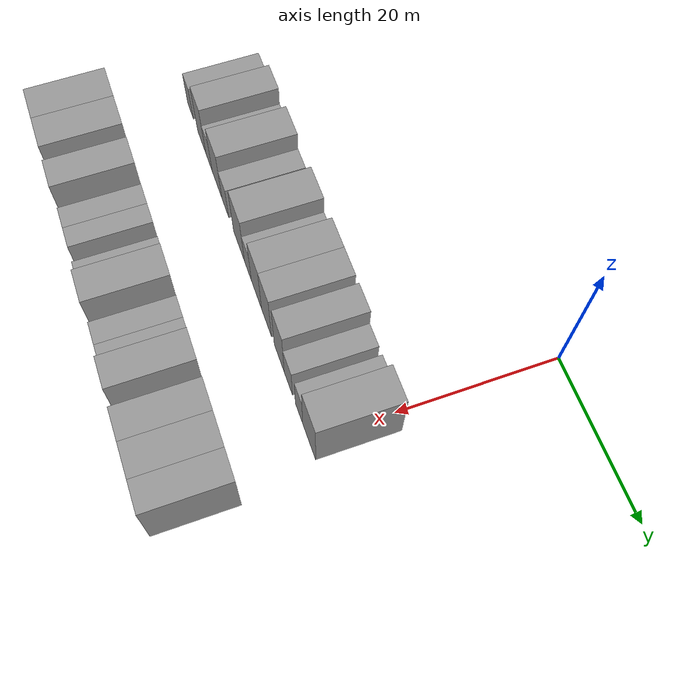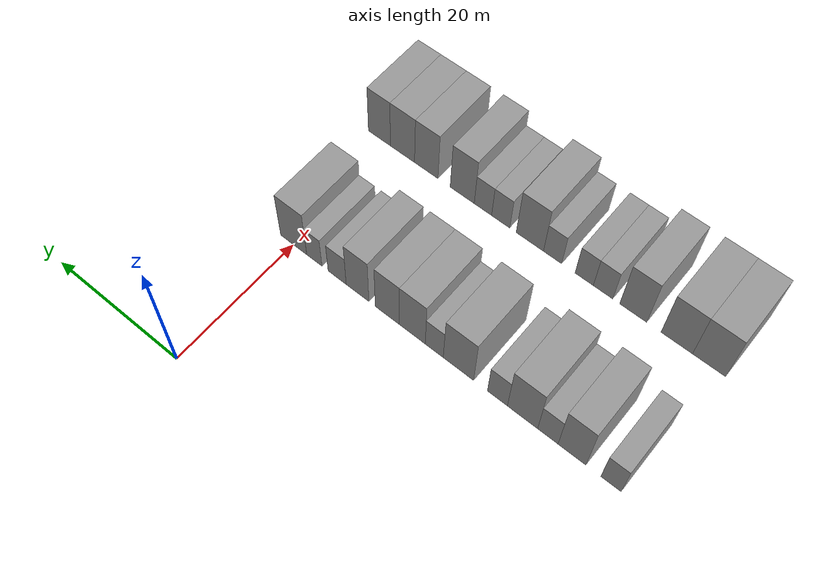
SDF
<sdf version="1.6">
 <world name="default">
  <model name="building_38">
   <static>1</static>
   <pose>25.0000 -47.1336 0 0.000000 0.000000 0.000000</pose>
   <link name="link">
    <pose>0 0 3.00 0 0 0</pose>
    <collision name="collision"><geometry><box><size>10.0000 2.6821 6.0000</size></box></geometry></collision>
    <visual name="visual">
     <cast_shadows>0</cast_shadows>
     <geometry><box><size>10.0000 2.6821 6.0000</size></box></geometry>
     <material>
      <script>
       <uri>model://grey_wall/materials/scripts</uri>
       <uri>model://grey_wall/materials/textures</uri>
       <name>vrc/grey_wall</name>
      </script>
     </material>
    </visual>
   </link>
  </model>
  <model name="building_39">
   <static>1</static>
   <pose>25.0000 -41.9003 0 0.000000 0.000000 0.000000</pose>
   <link name="link">
    <pose>0 0 4.50 0 0 0</pose>
    <collision name="collision"><geometry><box><size>10.0000 3.7845 9.0000</size></box></geometry></collision>
    <visual name="visual">
     <cast_shadows>0</cast_shadows>
     <geometry><box><size>10.0000 3.7845 9.0000</size></box></geometry>
     <material>
      <script>
       <uri>model://grey_wall/materials/scripts</uri>
       <uri>model://grey_wall/materials/textures</uri>
       <name>vrc/grey_wall</name>
      </script>
     </material>
    </visual>
   </link>
  </model>
  <model name="building_40">
   <static>1</static>
   <pose>25.0000 -38.6015 0 0.000000 0.000000 0.000000</pose>
   <link name="link">
    <pose>0 0 3.00 0 0 0</pose>
    <collision name="collision"><geometry><box><size>10.0000 2.8131 6.0000</size></box></geometry></collision>
    <visual name="visual">
     <cast_shadows>0</cast_shadows>
     <geometry><box><size>10.0000 2.8131 6.0000</size></box></geometry>
     <material>
      <script>
       <uri>model://grey_wall/materials/scripts</uri>
       <uri>model://grey_wall/materials/textures</uri>
       <name>vrc/grey_wall</name>
      </script>
     </material>
    </visual>
   </link>
  </model>
  <model name="building_41">
   <static>1</static>
   <pose>25.0000 -35.0680 0 0.000000 0.000000 0.000000</pose>
   <link name="link">
    <pose>0 0 4.50 0 0 0</pose>
    <collision name="collision"><geometry><box><size>10.0000 4.2538 9.0000</size></box></geometry></collision>
    <visual name="visual">
     <cast_shadows>0</cast_shadows>
     <geometry><box><size>10.0000 4.2538 9.0000</size></box></geometry>
     <material>
      <script>
       <uri>model://grey_wall/materials/scripts</uri>
       <uri>model://grey_wall/materials/textures</uri>
       <name>vrc/grey_wall</name>
      </script>
     </material>
    </visual>
   </link>
  </model>
  <model name="building_42">
   <static>1</static>
   <pose>25.0000 -31.5135 0 0.000000 0.000000 0.000000</pose>
   <link name="link">
    <pose>0 0 3.00 0 0 0</pose>
    <collision name="collision"><geometry><box><size>10.0000 2.8553 6.0000</size></box></geometry></collision>
    <visual name="visual">
     <cast_shadows>0</cast_shadows>
     <geometry><box><size>10.0000 2.8553 6.0000</size></box></geometry>
     <material>
      <script>
       <uri>model://grey_wall/materials/scripts</uri>
       <uri>model://grey_wall/materials/textures</uri>
       <name>vrc/grey_wall</name>
      </script>
     </material>
    </visual>
   </link>
  </model>
  <model name="building_43">
   <static>1</static>
   <pose>25.0000 -25.8438 0 0.000000 0.000000 0.000000</pose>
   <link name="link">
    <pose>0 0 4.50 0 0 0</pose>
    <collision name="collision"><geometry><box><size>10.0000 4.4839 9.0000</size></box></geometry></collision>
    <visual name="visual">
     <cast_shadows>0</cast_shadows>
     <geometry><box><size>10.0000 4.4839 9.0000</size></box></geometry>
     <material>
      <script>
       <uri>model://grey_wall/materials/scripts</uri>
       <uri>model://grey_wall/materials/textures</uri>
       <name>vrc/grey_wall</name>
      </script>
     </material>
    </visual>
   </link>
  </model>
  <model name="building_44">
   <static>1</static>
   <pose>25.0000 -22.2543 0 0.000000 0.000000 0.000000</pose>
   <link name="link">
    <pose>0 0 3.00 0 0 0</pose>
    <collision name="collision"><geometry><box><size>10.0000 2.6952 6.0000</size></box></geometry></collision>
    <visual name="visual">
     <cast_shadows>0</cast_shadows>
     <geometry><box><size>10.0000 2.6952 6.0000</size></box></geometry>
     <material>
      <script>
       <uri>model://grey_wall/materials/scripts</uri>
       <uri>model://grey_wall/materials/textures</uri>
       <name>vrc/grey_wall</name>
      </script>
     </material>
    </visual>
   </link>
  </model>
  <model name="building_45">
   <static>1</static>
   <pose>25.0000 -18.9246 0 0.000000 0.000000 0.000000</pose>
   <link name="link">
    <pose>0 0 4.50 0 0 0</pose>
    <collision name="collision"><geometry><box><size>10.0000 3.9641 9.0000</size></box></geometry></collision>
    <visual name="visual">
     <cast_shadows>0</cast_shadows>
     <geometry><box><size>10.0000 3.9641 9.0000</size></box></geometry>
     <material>
      <script>
       <uri>model://grey_wall/materials/scripts</uri>
       <uri>model://grey_wall/materials/textures</uri>
       <name>vrc/grey_wall</name>
      </script>
     </material>
    </visual>
   </link>
  </model>
  <model name="building_46">
   <static>1</static>
   <pose>25.0000 -15.0828 0 0.000000 0.000000 0.000000</pose>
   <link name="link">
    <pose>0 0 4.50 0 0 0</pose>
    <collision name="collision"><geometry><box><size>10.0000 3.7196 9.0000</size></box></geometry></collision>
    <visual name="visual">
     <cast_shadows>0</cast_shadows>
     <geometry><box><size>10.0000 3.7196 9.0000</size></box></geometry>
     <material>
      <script>
       <uri>model://grey_wall/materials/scripts</uri>
       <uri>model://grey_wall/materials/textures</uri>
       <name>vrc/grey_wall</name>
      </script>
     </material>
    </visual>
   </link>
  </model>
  <model name="building_47">
   <static>1</static>
   <pose>25.0000 -10.4164 0 0.000000 0.000000 0.000000</pose>
   <link name="link">
    <pose>0 0 4.50 0 0 0</pose>
    <collision name="collision"><geometry><box><size>10.0000 3.6133 9.0000</size></box></geometry></collision>
    <visual name="visual">
     <cast_shadows>0</cast_shadows>
     <geometry><box><size>10.0000 3.6133 9.0000</size></box></geometry>
     <material>
      <script>
       <uri>model://grey_wall/materials/scripts</uri>
       <uri>model://grey_wall/materials/textures</uri>
       <name>vrc/grey_wall</name>
      </script>
     </material>
    </visual>
   </link>
  </model>
  <model name="building_48">
   <static>1</static>
   <pose>25.0000 -7.1538 0 0.000000 0.000000 0.000000</pose>
   <link name="link">
    <pose>0 0 3.00 0 0 0</pose>
    <collision name="collision"><geometry><box><size>10.0000 2.9118 6.0000</size></box></geometry></collision>
    <visual name="visual">
     <cast_shadows>0</cast_shadows>
     <geometry><box><size>10.0000 2.9118 6.0000</size></box></geometry>
     <material>
      <script>
       <uri>model://grey_wall/materials/scripts</uri>
       <uri>model://grey_wall/materials/textures</uri>
       <name>vrc/grey_wall</name>
      </script>
     </material>
    </visual>
   </link>
  </model>
  <model name="building_49">
   <static>1</static>
   <pose>25.0000 -3.4486 0 0.000000 0.000000 0.000000</pose>
   <link name="link">
    <pose>0 0 3.00 0 0 0</pose>
    <collision name="collision"><geometry><box><size>10.0000 2.4985 6.0000</size></box></geometry></collision>
    <visual name="visual">
     <cast_shadows>0</cast_shadows>
     <geometry><box><size>10.0000 2.4985 6.0000</size></box></geometry>
     <material>
      <script>
       <uri>model://grey_wall/materials/scripts</uri>
       <uri>model://grey_wall/materials/textures</uri>
       <name>vrc/grey_wall</name>
      </script>
     </material>
    </visual>
   </link>
  </model>
  <model name="building_50">
   <static>1</static>
   <pose>25.0000 -0.0272 0 0.000000 0.000000 0.000000</pose>
   <link name="link">
    <pose>0 0 4.50 0 0 0</pose>
    <collision name="collision"><geometry><box><size>10.0000 4.3445 9.0000</size></box></geometry></collision>
    <visual name="visual">
     <cast_shadows>0</cast_shadows>
     <geometry><box><size>10.0000 4.3445 9.0000</size></box></geometry>
     <material>
      <script>
       <uri>model://grey_wall/materials/scripts</uri>
       <uri>model://grey_wall/materials/textures</uri>
       <name>vrc/grey_wall</name>
      </script>
     </material>
    </visual>
   </link>
  </model>
  <model name="building_142">
   <static>1</static>
   <pose>44.0000 -47.7622 0 0.000000 0.000000 0.000000</pose>
   <link name="link">
    <pose>0 0 4.50 0 0 0</pose>
    <collision name="collision"><geometry><box><size>10.0000 4.4777 9.0000</size></box></geometry></collision>
    <visual name="visual">
     <cast_shadows>0</cast_shadows>
     <geometry><box><size>10.0000 4.4777 9.0000</size></box></geometry>
     <material>
      <script>
       <uri>model://grey_wall/materials/scripts</uri>
       <uri>model://grey_wall/materials/textures</uri>
       <name>vrc/grey_wall</name>
      </script>
     </material>
    </visual>
   </link>
  </model>
  <model name="building_143">
   <static>1</static>
   <pose>44.0000 -43.3488 0 0.000000 0.000000 0.000000</pose>
   <link name="link">
    <pose>0 0 4.50 0 0 0</pose>
    <collision name="collision"><geometry><box><size>10.0000 4.3491 9.0000</size></box></geometry></collision>
    <visual name="visual">
     <cast_shadows>0</cast_shadows>
     <geometry><box><size>10.0000 4.3491 9.0000</size></box></geometry>
     <material>
      <script>
       <uri>model://grey_wall/materials/scripts</uri>
       <uri>model://grey_wall/materials/textures</uri>
       <name>vrc/grey_wall</name>
      </script>
     </material>
    </visual>
   </link>
  </model>
  <model name="building_144">
   <static>1</static>
   <pose>44.0000 -37.2483 0 0.000000 0.000000 0.000000</pose>
   <link name="link">
    <pose>0 0 4.50 0 0 0</pose>
    <collision name="collision"><geometry><box><size>10.0000 3.8519 9.0000</size></box></geometry></collision>
    <visual name="visual">
     <cast_shadows>0</cast_shadows>
     <geometry><box><size>10.0000 3.8519 9.0000</size></box></geometry>
     <material>
      <script>
       <uri>model://grey_wall/materials/scripts</uri>
       <uri>model://grey_wall/materials/textures</uri>
       <name>vrc/grey_wall</name>
      </script>
     </material>
    </visual>
   </link>
  </model>
  <model name="building_145">
   <static>1</static>
   <pose>44.0000 -32.9119 0 0.000000 0.000000 0.000000</pose>
   <link name="link">
    <pose>0 0 3.00 0 0 0</pose>
    <collision name="collision"><geometry><box><size>10.0000 2.8209 6.0000</size></box></geometry></collision>
    <visual name="visual">
     <cast_shadows>0</cast_shadows>
     <geometry><box><size>10.0000 2.8209 6.0000</size></box></geometry>
     <material>
      <script>
       <uri>model://grey_wall/materials/scripts</uri>
       <uri>model://grey_wall/materials/textures</uri>
       <name>vrc/grey_wall</name>
      </script>
     </material>
    </visual>
   </link>
  </model>
  <model name="building_146">
   <static>1</static>
   <pose>44.0000 -30.1590 0 0.000000 0.000000 0.000000</pose>
   <link name="link">
    <pose>0 0 3.00 0 0 0</pose>
    <collision name="collision"><geometry><box><size>10.0000 2.6849 6.0000</size></box></geometry></collision>
    <visual name="visual">
     <cast_shadows>0</cast_shadows>
     <geometry><box><size>10.0000 2.6849 6.0000</size></box></geometry>
     <material>
      <script>
       <uri>model://grey_wall/materials/scripts</uri>
       <uri>model://grey_wall/materials/textures</uri>
       <name>vrc/grey_wall</name>
      </script>
     </material>
    </visual>
   </link>
  </model>
  <model name="building_147">
   <static>1</static>
   <pose>44.0000 -25.4429 0 0.000000 0.000000 0.000000</pose>
   <link name="link">
    <pose>0 0 3.00 0 0 0</pose>
    <collision name="collision"><geometry><box><size>10.0000 2.7472 6.0000</size></box></geometry></collision>
    <visual name="visual">
     <cast_shadows>0</cast_shadows>
     <geometry><box><size>10.0000 2.7472 6.0000</size></box></geometry>
     <material>
      <script>
       <uri>model://grey_wall/materials/scripts</uri>
       <uri>model://grey_wall/materials/textures</uri>
       <name>vrc/grey_wall</name>
      </script>
     </material>
    </visual>
   </link>
  </model>
  <model name="building_148">
   <static>1</static>
   <pose>44.0000 -21.9827 0 0.000000 0.000000 0.000000</pose>
   <link name="link">
    <pose>0 0 4.50 0 0 0</pose>
    <collision name="collision"><geometry><box><size>10.0000 4.1733 9.0000</size></box></geometry></collision>
    <visual name="visual">
     <cast_shadows>0</cast_shadows>
     <geometry><box><size>10.0000 4.1733 9.0000</size></box></geometry>
     <material>
      <script>
       <uri>model://grey_wall/materials/scripts</uri>
       <uri>model://grey_wall/materials/textures</uri>
       <name>vrc/grey_wall</name>
      </script>
     </material>
    </visual>
   </link>
  </model>
  <model name="building_149">
   <static>1</static>
   <pose>44.0000 -17.4789 0 0.000000 0.000000 0.000000</pose>
   <link name="link">
    <pose>0 0 3.00 0 0 0</pose>
    <collision name="collision"><geometry><box><size>10.0000 2.8342 6.0000</size></box></geometry></collision>
    <visual name="visual">
     <cast_shadows>0</cast_shadows>
     <geometry><box><size>10.0000 2.8342 6.0000</size></box></geometry>
     <material>
      <script>
       <uri>model://grey_wall/materials/scripts</uri>
       <uri>model://grey_wall/materials/textures</uri>
       <name>vrc/grey_wall</name>
      </script>
     </material>
    </visual>
   </link>
  </model>
  <model name="building_150">
   <static>1</static>
   <pose>44.0000 -14.6883 0 0.000000 0.000000 0.000000</pose>
   <link name="link">
    <pose>0 0 3.00 0 0 0</pose>
    <collision name="collision"><geometry><box><size>10.0000 2.7471 6.0000</size></box></geometry></collision>
    <visual name="visual">
     <cast_shadows>0</cast_shadows>
     <geometry><box><size>10.0000 2.7471 6.0000</size></box></geometry>
     <material>
      <script>
       <uri>model://grey_wall/materials/scripts</uri>
       <uri>model://grey_wall/materials/textures</uri>
       <name>vrc/grey_wall</name>
      </script>
     </material>
    </visual>
   </link>
  </model>
  <model name="building_151">
   <static>1</static>
   <pose>44.0000 -11.3805 0 0.000000 0.000000 0.000000</pose>
   <link name="link">
    <pose>0 0 4.50 0 0 0</pose>
    <collision name="collision"><geometry><box><size>10.0000 3.8685 9.0000</size></box></geometry></collision>
    <visual name="visual">
     <cast_shadows>0</cast_shadows>
     <geometry><box><size>10.0000 3.8685 9.0000</size></box></geometry>
     <material>
      <script>
       <uri>model://grey_wall/materials/scripts</uri>
       <uri>model://grey_wall/materials/textures</uri>
       <name>vrc/grey_wall</name>
      </script>
     </material>
    </visual>
   </link>
  </model>
  <model name="building_152">
   <static>1</static>
   <pose>44.0000 -5.5124 0 0.000000 0.000000 0.000000</pose>
   <link name="link">
    <pose>0 0 4.50 0 0 0</pose>
    <collision name="collision"><geometry><box><size>10.0000 3.8677 9.0000</size></box></geometry></collision>
    <visual name="visual">
     <cast_shadows>0</cast_shadows>
     <geometry><box><size>10.0000 3.8677 9.0000</size></box></geometry>
     <material>
      <script>
       <uri>model://grey_wall/materials/scripts</uri>
       <uri>model://grey_wall/materials/textures</uri>
       <name>vrc/grey_wall</name>
      </script>
     </material>
    </visual>
   </link>
  </model>
  <model name="building_153">
   <static>1</static>
   <pose>44.0000 -1.5452 0 0.000000 0.000000 0.000000</pose>
   <link name="link">
    <pose>0 0 4.50 0 0 0</pose>
    <collision name="collision"><geometry><box><size>10.0000 4.0667 9.0000</size></box></geometry></collision>
    <visual name="visual">
     <cast_shadows>0</cast_shadows>
     <geometry><box><size>10.0000 4.0667 9.0000</size></box></geometry>
     <material>
      <script>
       <uri>model://grey_wall/materials/scripts</uri>
       <uri>model://grey_wall/materials/textures</uri>
       <name>vrc/grey_wall</name>
      </script>
     </material>
    </visual>
   </link>
  </model>
  <model name="building_154">
   <static>1</static>
   <pose>44.0000 2.3525 0 0.000000 0.000000 0.000000</pose>
   <link name="link">
    <pose>0 0 4.50 0 0 0</pose>
    <collision name="collision"><geometry><box><size>10.0000 3.7287 9.0000</size></box></geometry></collision>
    <visual name="visual">
     <cast_shadows>0</cast_shadows>
     <geometry><box><size>10.0000 3.7287 9.0000</size></box></geometry>
     <material>
      <script>
       <uri>model://grey_wall/materials/scripts</uri>
       <uri>model://grey_wall/materials/textures</uri>
       <name>vrc/grey_wall</name>
      </script>
     </material>
    </visual>
   </link>
  </model>
 </world>
</sdf>
